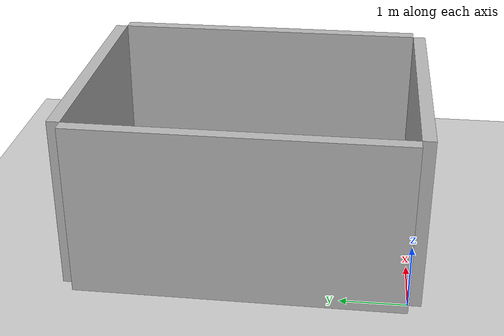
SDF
<sdf version="1.6">
 <world name="default">
  <light name="sun" type="directional">
   <pose>0 0 10 0 -0 0</pose>
   <diffuse>0.8 0.8 0.8 1</diffuse>
   <specular>0.2 0.2 0.2 1</specular>
   <attenuation>
    <range>1000</range>
    <constant>0.9</constant>
    <linear>0.01</linear>
    <quadratic>0.001</quadratic>
   </attenuation>
   <direction>-0.5 0.1 -0.9</direction>
  </light>
  <model name="ground_plane">
   <static>1</static>
   <link name="link">
    <collision name="collision">
     <geometry><plane><normal>0 0 1</normal><size>100 100</size></plane></geometry>
     <surface><friction><ode><mu>100</mu><mu2>50</mu2></ode></friction></surface>
    </collision>
    <visual name="visual">
     <cast_shadows>0</cast_shadows>
     <geometry><plane><normal>0 0 1</normal><size>100 100</size></plane></geometry>
     <material>
      <script><uri>file://media/materials/scripts/gazebo.material</uri><name>Gazebo/Grey</name></script>
     </material>
    </visual>
    <velocity_decay><linear>0</linear><angular>0</angular></velocity_decay>
   </link>
  </model>
  <physics name="default_physics" default="0" type="ode">
   <max_step_size>0.001</max_step_size>
   <real_time_factor>1</real_time_factor>
   <real_time_update_rate>1000</real_time_update_rate>
  </physics>
  <scene><ambient>0.4 0.4 0.4 1</ambient><background>0.7 0.7 0.7 1</background><shadows>1</shadows></scene>
  <spherical_coordinates>
   <surface_model>EARTH_WGS84</surface_model>
   <latitude_deg>0</latitude_deg>
   <longitude_deg>0</longitude_deg>
   <elevation>0</elevation>
   <heading_deg>0</heading_deg>
  </spherical_coordinates>
  <gravity>0 0 -9.8</gravity>
  <magnetic_field>6e-06 2.3e-05 -4.2e-05</magnetic_field>
  <atmosphere type="adiabatic"/>
  <model name="wall_3">
   <link name="link">
    <pose>-0.1 2.5 1.35 0 -0 0</pose>
    <inertial>
     <inertia><ixx>1</ixx><ixy>0</ixy><ixz>0</ixz><iyy>1</iyy><iyz>0</iyz><izz>1</izz></inertia>
     <mass>1</mass>
    </inertial>
    <visual name="visual">
     <geometry><box><size>0.2 5 2.7</size></box></geometry>
     <material><shader type="vertex"><normal_map>__default__</normal_map></shader></material>
    </visual>
    <collision name="collision">
     <geometry><box><size>0.2 5 2.7</size></box></geometry>
     <surface>
      <friction>
       <ode><mu>1</mu><mu2>1</mu2><fdir1>0 0 0</fdir1><slip1>0</slip1><slip2>0</slip2></ode>
       <torsional>
        <coefficient>1</coefficient>
        <patch_radius>0</patch_radius>
        <surface_radius>0</surface_radius>
        <use_patch_radius>1</use_patch_radius>
        <ode><slip>0</slip></ode>
       </torsional>
      </friction>
      <bounce><restitution_coefficient>0</restitution_coefficient><threshold>1e+06</threshold></bounce>
      <contact>
       <collide_without_contact>0</collide_without_contact>
       <collide_without_contact_bitmask>1</collide_without_contact_bitmask>
       <collide_bitmask>1</collide_bitmask>
       <ode>
        <soft_cfm>0</soft_cfm>
        <soft_erp>0.2</soft_erp>
        <kp>1e+13</kp>
        <kd>1</kd>
        <max_vel>0.01</max_vel>
        <min_depth>0</min_depth>
       </ode>
       <bullet>
        <split_impulse>1</split_impulse>
        <split_impulse_penetration_threshold>-0.01</split_impulse_penetration_threshold>
        <soft_cfm>0</soft_cfm>
        <soft_erp>0.2</soft_erp>
        <kp>1e+13</kp>
        <kd>1</kd>
       </bullet>
      </contact>
     </surface>
    </collision>
   </link>
   <static>1</static>
  </model>
  <model name="wall_3_clone">
   <link name="link">
    <pose>-0.1 2.5 1.35 0 -0 0</pose>
    <inertial>
     <inertia><ixx>1</ixx><ixy>0</ixy><ixz>0</ixz><iyy>1</iyy><iyz>0</iyz><izz>1</izz></inertia>
     <mass>1</mass>
    </inertial>
    <visual name="visual">
     <geometry><box><size>0.2 5 2.7</size></box></geometry>
     <material><shader type="vertex"><normal_map>__default__</normal_map></shader></material>
    </visual>
    <collision name="collision">
     <geometry><box><size>0.2 5 2.7</size></box></geometry>
     <surface>
      <friction>
       <ode><mu>1</mu><mu2>1</mu2><fdir1>0 0 0</fdir1><slip1>0</slip1><slip2>0</slip2></ode>
       <torsional>
        <coefficient>1</coefficient>
        <patch_radius>0</patch_radius>
        <surface_radius>0</surface_radius>
        <use_patch_radius>1</use_patch_radius>
        <ode><slip>0</slip></ode>
       </torsional>
      </friction>
      <bounce><restitution_coefficient>0</restitution_coefficient><threshold>1e+06</threshold></bounce>
      <contact>
       <collide_without_contact>0</collide_without_contact>
       <collide_without_contact_bitmask>1</collide_without_contact_bitmask>
       <collide_bitmask>1</collide_bitmask>
       <ode>
        <soft_cfm>0</soft_cfm>
        <soft_erp>0.2</soft_erp>
        <kp>1e+13</kp>
        <kd>1</kd>
        <max_vel>0.01</max_vel>
        <min_depth>0</min_depth>
       </ode>
       <bullet>
        <split_impulse>1</split_impulse>
        <split_impulse_penetration_threshold>-0.01</split_impulse_penetration_threshold>
        <soft_cfm>0</soft_cfm>
        <soft_erp>0.2</soft_erp>
        <kp>1e+13</kp>
        <kd>1</kd>
       </bullet>
      </contact>
     </surface>
    </collision>
   </link>
   <static>1</static>
   <pose>4.2 0 0 0 -0 0</pose>
  </model>
  <model name="wall_0_2">
   <link name="link">
    <pose>0.1 2 1.35 0 -0 0</pose>
    <inertial>
     <inertia><ixx>1</ixx><ixy>0</ixy><ixz>0</ixz><iyy>1</iyy><iyz>0</iyz><izz>1</izz></inertia>
     <mass>1</mass>
    </inertial>
    <visual name="visual">
     <geometry><box><size>0.2 4 2.7</size></box></geometry>
     <material><shader type="vertex"><normal_map>__default__</normal_map></shader></material>
    </visual>
    <collision name="collision">
     <geometry><box><size>0.2 4 2.7</size></box></geometry>
     <surface>
      <friction>
       <ode><mu>1</mu><mu2>1</mu2><fdir1>0 0 0</fdir1><slip1>0</slip1><slip2>0</slip2></ode>
       <torsional>
        <coefficient>1</coefficient>
        <patch_radius>0</patch_radius>
        <surface_radius>0</surface_radius>
        <use_patch_radius>1</use_patch_radius>
        <ode><slip>0</slip></ode>
       </torsional>
      </friction>
      <bounce><restitution_coefficient>0</restitution_coefficient><threshold>1e+06</threshold></bounce>
      <contact>
       <collide_without_contact>0</collide_without_contact>
       <collide_without_contact_bitmask>1</collide_without_contact_bitmask>
       <collide_bitmask>1</collide_bitmask>
       <ode>
        <soft_cfm>0</soft_cfm>
        <soft_erp>0.2</soft_erp>
        <kp>1e+13</kp>
        <kd>1</kd>
        <max_vel>0.01</max_vel>
        <min_depth>0</min_depth>
       </ode>
       <bullet>
        <split_impulse>1</split_impulse>
        <split_impulse_penetration_threshold>-0.01</split_impulse_penetration_threshold>
        <soft_cfm>0</soft_cfm>
        <soft_erp>0.2</soft_erp>
        <kp>1e+13</kp>
        <kd>1</kd>
       </bullet>
      </contact>
     </surface>
    </collision>
   </link>
   <static>1</static>
   <pose>0 0 0 0 0 -1.5708</pose>
  </model>
  <model name="wall_0_2_clone">
   <link name="link">
    <pose>0.1 2 1.35 0 -0 0</pose>
    <inertial>
     <inertia><ixx>1</ixx><ixy>0</ixy><ixz>0</ixz><iyy>1</iyy><iyz>0</iyz><izz>1</izz></inertia>
     <mass>1</mass>
    </inertial>
    <visual name="visual">
     <geometry><box><size>0.2 4 2.7</size></box></geometry>
     <material><shader type="vertex"><normal_map>__default__</normal_map></shader></material>
    </visual>
    <collision name="collision">
     <geometry><box><size>0.2 4 2.7</size></box></geometry>
     <surface>
      <friction>
       <ode><mu>1</mu><mu2>1</mu2><fdir1>0 0 0</fdir1><slip1>0</slip1><slip2>0</slip2></ode>
       <torsional>
        <coefficient>1</coefficient>
        <patch_radius>0</patch_radius>
        <surface_radius>0</surface_radius>
        <use_patch_radius>1</use_patch_radius>
        <ode><slip>0</slip></ode>
       </torsional>
      </friction>
      <bounce><restitution_coefficient>0</restitution_coefficient><threshold>1e+06</threshold></bounce>
      <contact>
       <collide_without_contact>0</collide_without_contact>
       <collide_without_contact_bitmask>1</collide_without_contact_bitmask>
       <collide_bitmask>1</collide_bitmask>
       <ode>
        <soft_cfm>0</soft_cfm>
        <soft_erp>0.2</soft_erp>
        <kp>1e+13</kp>
        <kd>1</kd>
        <max_vel>0.01</max_vel>
        <min_depth>0</min_depth>
       </ode>
       <bullet>
        <split_impulse>1</split_impulse>
        <split_impulse_penetration_threshold>-0.01</split_impulse_penetration_threshold>
        <soft_cfm>0</soft_cfm>
        <soft_erp>0.2</soft_erp>
        <kp>1e+13</kp>
        <kd>1</kd>
       </bullet>
      </contact>
     </surface>
    </collision>
   </link>
   <static>1</static>
   <pose>0 5.2 0 0 0 -1.5708</pose>
  </model>
 </world>
</sdf>
